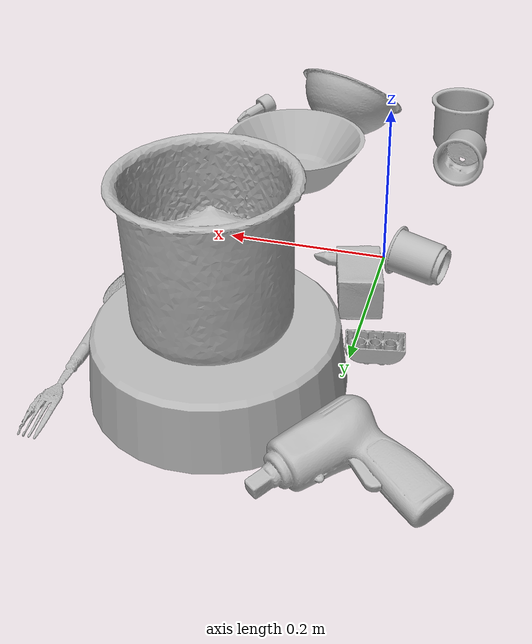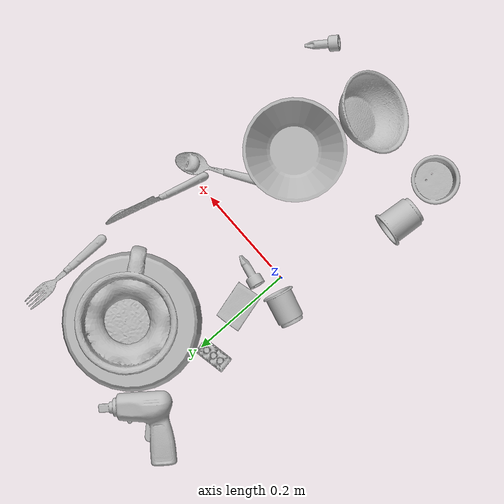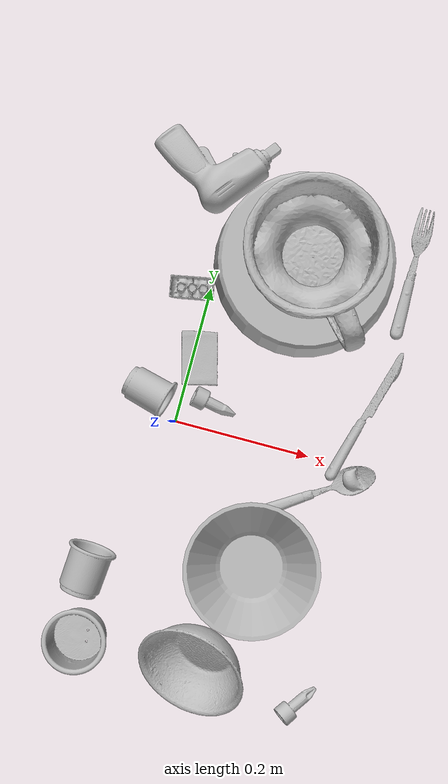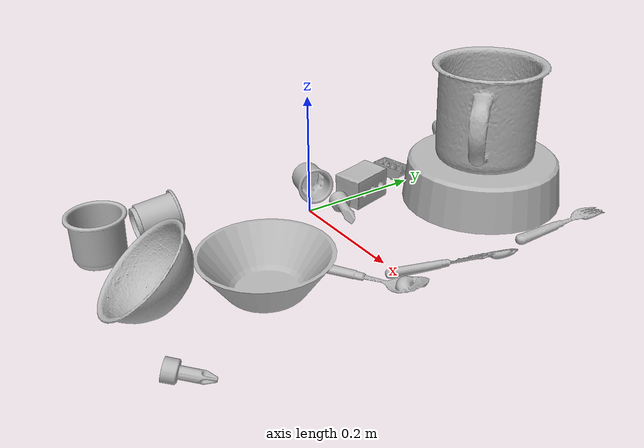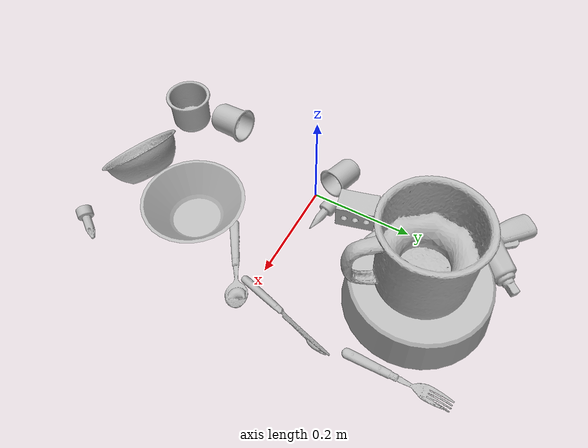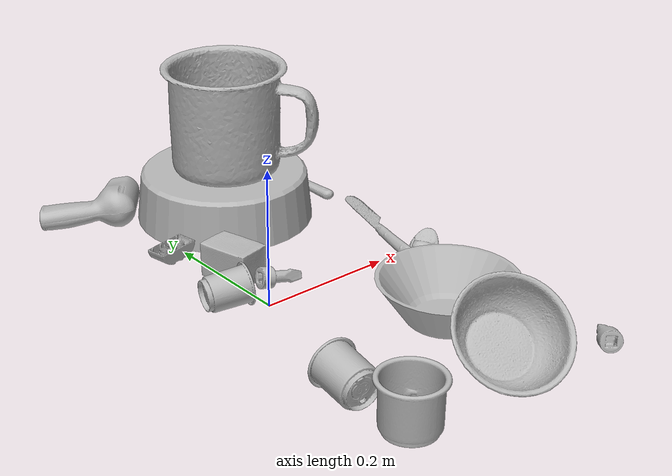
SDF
<sdf version="1.4">
  <world name="default">
    <light name="light1" type="point">
      <pose>0 0 1 0 0 0</pose>
      <diffuse>3 3 3 1</diffuse>
      <specular>3 3 3 1</specular>
    </light>
    <light name="light2" type="point">
      <pose>0 0.5 2 0 0 0</pose>
      <diffuse>1 1 1 1</diffuse>
      <specular>1 1 1 1</specular>
    </light>
    <light name="light3" type="point">
      <pose>0 0.5 2 0 0 0</pose>
      <diffuse>3 3 3 1</diffuse>
      <specular>3 3 3 1</specular>
    </light>
    <scene>
      <ambient>0.7 0.7 0.7</ambient>
    </scene>
    <model name="plate1">
      <link name="link_plate1">
        <collision name="default">
          <geometry>
            <mesh>
              <uri>model://pan_tefal/collision_meshes/collision.obj</uri>
              <scale>1.0 1.0 1.0</scale>
            </mesh>
          </geometry>
          <surface>
            <friction>
              <ode>
                <mu>0.5</mu>
                <mu2>0.5</mu2>
              </ode>
            </friction>
          <contact>
        <ode>
            <max_vel>0</max_vel>
            <min_depth>0.0001</min_depth>
            <kp>1e8</kp>
        </ode>
    </contact></surface>
        </collision>
        <visual name="default">
          <geometry>
            <mesh>
              <uri>model://pan_tefal/visual_meshes/visual.dae</uri>
              <scale>1.0 1.0 1.0</scale>
            </mesh>
          </geometry>
        </visual>
        <inertial>
          <mass>1.356081485748291</mass>
          <pose>-0.00018001878925133497 3.2792810088722035e-05 -0.008514934219419956 0.000819032333381865 -0.0003301471985614655 -0.33185384828338066</pose>
          <inertia>
            <ixx>0.009360965</ixx>
            <iyy>0.009421317</iyy>
            <izz>0.017231734</izz>
            <ixy>0</ixy>
            <ixz>0</ixz>
            <iyz>0</iyz>
          </inertia>
        </inertial>
      </link>
      <pose>0.12292744219303131 0.2665383517742157 0.037821996957063675 -3.1415922013490336 -3.180583982450513e-07 0.4598983993760587</pose>
    </model>
    <model name="cup1">
      <link name="link_cup1">
        <collision name="default">
          <geometry>
            <mesh>
              <uri>model://mug/collision_meshes/collision.obj</uri>
              <scale>2.0 2.0 2.0</scale>
            </mesh>
          </geometry>
          <surface>
            <friction>
              <ode>
                <mu>0.5</mu>
                <mu2>0.5</mu2>
              </ode>
            </friction>
          <contact>
        <ode>
            <max_vel>0</max_vel>
            <min_depth>0.0001</min_depth>
            <kp>1e8</kp>
        </ode>
    </contact></surface>
        </collision>
        <visual name="default">
          <geometry>
            <mesh>
              <uri>model://mug/visual_meshes/visual.dae</uri>
              <scale>2.0 2.0 2.0</scale>
            </mesh>
          </geometry>
        </visual>
        <inertial>
          <mass>1.425228476524353</mass>
          <pose>0.019143342971801758 0.0016286519821733236 -0.021894657984375954 -0.12983169455958588 0.08737743422724535 0.05507285753370488</pose>
          <inertia>
            <ixx>0.005662833</ixx>
            <iyy>0.0063250507</iyy>
            <izz>0.0073150056</izz>
            <ixy>0</ixy>
            <ixz>0</ixz>
            <iyz>0</iyz>
          </inertia>
        </inertial>
      </link>
      <pose>0.14218580722808838 0.24743184447288513 0.157894566655159 -0.002326427647619247 0.003202443183899544 2.237102206608735</pose>
    </model>
    <model name="silverware1">
      <link name="link_silverware1">
        <collision name="default">
          <geometry>
            <mesh>
              <uri>model://spoon/collision_meshes/collision.obj</uri>
              <scale>1.0 1.0 1.0</scale>
            </mesh>
          </geometry>
          <surface>
            <friction>
              <ode>
                <mu>0.5</mu>
                <mu2>0.5</mu2>
              </ode>
            </friction>
          <contact>
        <ode>
            <max_vel>0</max_vel>
            <min_depth>0.0001</min_depth>
            <kp>1e8</kp>
        </ode>
    </contact></surface>
        </collision>
        <visual name="default">
          <geometry>
            <mesh>
              <uri>model://spoon/visual_meshes/visual.dae</uri>
              <scale>1.0 1.0 1.0</scale>
            </mesh>
          </geometry>
        </visual>
        <inertial>
          <mass>0.031423501670360565</mass>
          <pose>-0.005526318680495024 -0.0016034176805987954 -0.000727165665011853 0.035217765619004186 -0.03906586018731898 0.006150610672177042</pose>
          <inertia>
            <ixx>1.7478262e-06</ixx>
            <iyy>0.0001195654</iyy>
            <izz>0.000120427336</izz>
            <ixy>0</ixy>
            <ixz>0</ixz>
            <iyz>0</iyz>
          </inertia>
        </inertial>
      </link>
      <pose>0.21749168634414673 -0.0499829426407814 0.008385264314711094 0.006729151014188214 0.026892999283891626 0.5879150967568473</pose>
    </model>
    <model name="silverware2">
      <link name="link_silverware2">
        <collision name="default">
          <geometry>
            <mesh>
              <uri>model://fork/collision_meshes/collision.obj</uri>
              <scale>1.0 1.0 1.0</scale>
            </mesh>
          </geometry>
          <surface>
            <friction>
              <ode>
                <mu>0.5</mu>
                <mu2>0.5</mu2>
              </ode>
            </friction>
          <contact>
        <ode>
            <max_vel>0</max_vel>
            <min_depth>0.0001</min_depth>
            <kp>1e8</kp>
        </ode>
    </contact></surface>
        </collision>
        <visual name="default">
          <geometry>
            <mesh>
              <uri>model://fork/visual_meshes/visual.dae</uri>
              <scale>1.0 1.0 1.0</scale>
            </mesh>
          </geometry>
        </visual>
        <inertial>
          <mass>0.02368462271988392</mass>
          <pose>-0.02957003191113472 0.00046588238910771906 0.00032188621116802096 -0.013550757689210725 -0.010977831639922976 0.014453892765665301</pose>
          <inertia>
            <ixx>8.3028004e-07</ixx>
            <iyy>6.183376e-05</iyy>
            <izz>6.220513e-05</izz>
            <ixy>0</ixy>
            <ixz>0</ixz>
            <iyz>0</iyz>
          </inertia>
        </inertial>
      </link>
      <pose>0.2758885622024536 0.29614439606666565 0.007446623872965574 -3.063494724500116 0.0028358161987062334 1.5802216011532229</pose>
    </model>
    <model name="silverware3">
      <link name="link_silverware3">
        <collision name="default">
          <geometry>
            <mesh>
              <uri>model://knife/collision_meshes/collision.obj</uri>
              <scale>1.0 1.0 1.0</scale>
            </mesh>
          </geometry>
          <surface>
            <friction>
              <ode>
                <mu>0.5</mu>
                <mu2>0.5</mu2>
              </ode>
            </friction>
          <contact>
        <ode>
            <max_vel>0</max_vel>
            <min_depth>0.0001</min_depth>
            <kp>1e8</kp>
        </ode>
    </contact></surface>
        </collision>
        <visual name="default">
          <geometry>
            <mesh>
              <uri>model://knife/visual_meshes/visual.dae</uri>
              <scale>1.0 1.0 1.0</scale>
            </mesh>
          </geometry>
        </visual>
        <inertial>
          <mass>0.023530498147010803</mass>
          <pose>-0.023785250261425972 0.0015275124460458755 5.062020863988437e-05 0.07305757972864607 0.01724841573343299 -0.007409825279630946</pose>
          <inertia>
            <ixx>6.678909e-07</ixx>
            <iyy>9.040038e-05</iyy>
            <izz>9.0615475e-05</izz>
            <ixy>0</ixy>
            <ixz>0</ixz>
            <iyz>0</iyz>
          </inertia>
        </inertial>
      </link>
      <pose>0.26653361320495605 0.07812826335430145 0.008919013664126396 -0.8984559246120966 0.00416876616107047 1.2929390870400275</pose>
    </model>
    <model name="cup3">
      <link name="link_cup3">
        <collision name="default">
          <geometry>
            <mesh>
              <uri>model://b_cups/collision_meshes/collision.obj</uri>
              <scale>1.0 1.0 1.0</scale>
            </mesh>
          </geometry>
          <surface>
            <friction>
              <ode>
                <mu>0.5</mu>
                <mu2>0.5</mu2>
              </ode>
            </friction>
          <contact>
        <ode>
            <max_vel>0</max_vel>
            <min_depth>0.0001</min_depth>
            <kp>1e8</kp>
        </ode>
    </contact></surface>
        </collision>
        <visual name="default">
          <geometry>
            <mesh>
              <uri>model://b_cups/visual_meshes/visual.dae</uri>
              <scale>1.0 1.0 1.0</scale>
            </mesh>
          </geometry>
        </visual>
        <inertial>
          <mass>0.033049143850803375</mass>
          <pose>0.0005182002205401659 0.001805859967134893 -0.0013381808530539274 0.11356265792291019 0.03872585472979472 -0.3457023826899558</pose>
          <inertia>
            <ixx>2.1632983e-05</ixx>
            <iyy>2.1222275e-05</iyy>
            <izz>1.8203747e-05</izz>
            <ixy>0</ixy>
            <ixz>0</ixz>
            <iyz>0</iyz>
          </inertia>
        </inertial>
      </link>
      <pose>-0.048146363347768784 0.032521847635507584 0.027487030252814293 -1.266886968462272 1.2680179282658803 -1.531915893667411</pose>
    </model>
    <model name="cup4">
      <link name="link_cup4">
        <collision name="default">
          <geometry>
            <mesh>
              <uri>model://h_cups/collision_meshes/collision.obj</uri>
              <scale>1.0 1.0 1.0</scale>
            </mesh>
          </geometry>
          <surface>
            <friction>
              <ode>
                <mu>0.5</mu>
                <mu2>0.5</mu2>
              </ode>
            </friction>
          <contact>
        <ode>
            <max_vel>0</max_vel>
            <min_depth>0.0001</min_depth>
            <kp>1e8</kp>
        </ode>
    </contact></surface>
        </collision>
        <visual name="default">
          <geometry>
            <mesh>
              <uri>model://h_cups/visual_meshes/visual.dae</uri>
              <scale>1.0 1.0 1.0</scale>
            </mesh>
          </geometry>
        </visual>
        <inertial>
          <mass>0.11347958445549011</mass>
          <pose>-2.7030910132452846e-05 0.00023018615320324898 -0.0018405403243377805 -0.02436217983877791 0.06545222634893223 0.12885210457354207</pose>
          <inertia>
            <ixx>0.0001465536</ixx>
            <iyy>0.00014480477</iyy>
            <izz>0.00015369456</izz>
            <ixy>0</ixy>
            <ixz>0</ixz>
            <iyz>0</iyz>
          </inertia>
        </inertial>
      </link>
      <pose>-0.05322358012199402 -0.3353569507598877 0.03775801509618759 -8.912909670256538e-08 2.3435164295727495e-08 -3.117319424744424</pose>
    </model>
    <model name="cup5">
      <link name="link_cup5">
        <collision name="default">
          <geometry>
            <mesh>
              <uri>model://d_cups/collision_meshes/collision.obj</uri>
              <scale>1.0 1.0 1.0</scale>
            </mesh>
          </geometry>
          <surface>
            <friction>
              <ode>
                <mu>0.5</mu>
                <mu2>0.5</mu2>
              </ode>
            </friction>
          <contact>
        <ode>
            <max_vel>0</max_vel>
            <min_depth>0.0001</min_depth>
            <kp>1e8</kp>
        </ode>
    </contact></surface>
        </collision>
        <visual name="default">
          <geometry>
            <mesh>
              <uri>model://d_cups/visual_meshes/visual.dae</uri>
              <scale>1.0 1.0 1.0</scale>
            </mesh>
          </geometry>
        </visual>
        <inertial>
          <mass>0.039110079407691956</mass>
          <pose>0.0008068050956353545 0.0019117392366752028 -0.0022666517179459333 0.24011224021147495 -0.247107611945545 0.594295747375292</pose>
          <inertia>
            <ixx>3.2744327e-05</ixx>
            <iyy>3.2649565e-05</iyy>
            <izz>2.9639183e-05</izz>
            <ixy>0</ixy>
            <ixz>0</ixz>
            <iyz>0</iyz>
          </inertia>
        </inertial>
      </link>
      <pose>-0.06734392791986465 -0.23923428356647491 0.03239024057984352 -1.4246072361763003 0.7879923424165906 0.015452282588060112</pose>
    </model>
    <model name="bowl1">
      <link name="link_bowl1">
        <collision name="default">
          <geometry>
            <mesh>
              <uri>model://bowl/collision_meshes/collision.obj</uri>
              <scale>1.0 1.0 1.0</scale>
            </mesh>
          </geometry>
          <surface>
            <friction>
              <ode>
                <mu>0.5</mu>
                <mu2>0.5</mu2>
              </ode>
            </friction>
          <contact>
        <ode>
            <max_vel>0</max_vel>
            <min_depth>0.0001</min_depth>
            <kp>1e8</kp>
        </ode>
    </contact></surface>
        </collision>
        <visual name="default">
          <geometry>
            <mesh>
              <uri>model://bowl/visual_meshes/visual.dae</uri>
              <scale>1.0 1.0 1.0</scale>
            </mesh>
          </geometry>
        </visual>
        <inertial>
          <mass>0.04740063101053238</mass>
          <pose>0.00020445372501853853 -0.001030205050483346 -0.000804265437182039 -0.015764138065403298 0.014546740803255881 0.7140373892972721</pose>
          <inertia>
            <ixx>0.00010888298</ixx>
            <iyy>0.000106450105</iyy>
            <izz>0.00018317858</izz>
            <ixy>0</ixy>
            <ixz>0</ixz>
            <iyz>0</iyz>
          </inertia>
        </inertial>
      </link>
      <pose>0.12083811312913895 -0.32045069336891174 0.05010615661740303 0.6730440239422546 0.28313888407168647 -0.6928762459858433</pose>
    </model>
    <model name="bowl2">
      <link name="link_bowl2">
        <collision name="default">
          <geometry>
            <mesh>
              <uri>model://bowl_a/collision_meshes/collision.obj</uri>
              <scale>1.0 1.0 1.0</scale>
            </mesh>
          </geometry>
          <surface>
            <friction>
              <ode>
                <mu>0.5</mu>
                <mu2>0.5</mu2>
              </ode>
            </friction>
          <contact>
        <ode>
            <max_vel>0</max_vel>
            <min_depth>0.0001</min_depth>
            <kp>1e8</kp>
        </ode>
    </contact></surface>
        </collision>
        <visual name="default">
          <geometry>
            <mesh>
              <uri>model://bowl_a/visual_meshes/visual.dae</uri>
              <scale>1.0 1.0 1.0</scale>
            </mesh>
          </geometry>
        </visual>
        <inertial>
          <mass>0.4596928358078003</mass>
          <pose>0.0002786756376735866 4.731212538899854e-05 -0.001376529224216938 -0.0009805332698969178 -0.0010938264579112213 -0.1912378887702168</pose>
          <inertia>
            <ixx>0.0013087663</ixx>
            <iyy>0.0013168014</iyy>
            <izz>0.002327691</izz>
            <ixy>0</ixy>
            <ixz>0</ixz>
            <iyz>0</iyz>
          </inertia>
        </inertial>
      </link>
      <pose>0.16224166750907898 -0.17611730098724365 0.030383002012968063 -2.844582131628633e-08 1.4603533876799803e-07 1.4250926766341268</pose>
    </model>
    <model name="toy1">
      <link name="link_toy1">
        <collision name="default">
          <geometry>
            <mesh>
              <uri>model://d_toy_airplane/collision_meshes/collision.obj</uri>
              <scale>1.0 1.0 1.0</scale>
            </mesh>
          </geometry>
          <surface>
            <friction>
              <ode>
                <mu>0.5</mu>
                <mu2>0.5</mu2>
              </ode>
            </friction>
          <contact>
        <ode>
            <max_vel>0</max_vel>
            <min_depth>0.0001</min_depth>
            <kp>1e8</kp>
        </ode>
    </contact></surface>
        </collision>
        <visual name="default">
          <geometry>
            <mesh>
              <uri>model://d_toy_airplane/visual_meshes/visual.dae</uri>
              <scale>1.0 1.0 1.0</scale>
            </mesh>
          </geometry>
        </visual>
        <inertial>
          <mass>0.017302583903074265</mass>
          <pose>9.410295751877129e-05 -5.809326466987841e-05 -0.011728093028068542 0.00026573120399734447 0.004679044314999465 0.5192011935173154</pose>
          <inertia>
            <ixx>5.1869783e-06</ixx>
            <iyy>5.190892e-06</iyy>
            <izz>1.5659823e-06</izz>
            <ixy>0</ixy>
            <ixz>0</ixz>
            <iyz>0</iyz>
          </inertia>
        </inertial>
      </link>
      <pose>0.2782635986804962 -0.3477688729763031 0.011234505102038383 1.794414698215531 -0.1970391874689136 2.4459616428813518</pose>
    </model>
    <model name="toy2">
      <link name="link_toy2">
        <collision name="default">
          <geometry>
            <mesh>
              <uri>model://b_toy_airplane/collision_meshes/collision.obj</uri>
              <scale>1.0 1.0 1.0</scale>
            </mesh>
          </geometry>
          <surface>
            <friction>
              <ode>
                <mu>0.5</mu>
                <mu2>0.5</mu2>
              </ode>
            </friction>
          <contact>
        <ode>
            <max_vel>0</max_vel>
            <min_depth>0.0001</min_depth>
            <kp>1e8</kp>
        </ode>
    </contact></surface>
        </collision>
        <visual name="default">
          <geometry>
            <mesh>
              <uri>model://b_toy_airplane/visual_meshes/visual.dae</uri>
              <scale>1.0 1.0 1.0</scale>
            </mesh>
          </geometry>
        </visual>
        <inertial>
          <mass>0.45341360569000244</mass>
          <pose>0.00508136535063386 0.004015584941953421 0.00954306498169899 -0.04001809497736226 -0.04022180630889015 -0.560150289687741</pose>
          <inertia>
            <ixx>0.0008417707</ixx>
            <iyy>0.00033646397</iyy>
            <izz>0.0010472467</izz>
            <ixy>0</ixy>
            <ixz>0</ixz>
            <iyz>0</iyz>
          </inertia>
        </inertial>
      </link>
      <pose>-0.03942769765853882 0.36173924803733826 0.0356890894472599 3.0695709014683663 0.07405955378783388 0.9190738026706002</pose>
    </model>
    <model name="toy3">
      <link name="link_toy3">
        <collision name="default">
          <geometry>
            <mesh>
              <uri>model://a_lego_duplo/collision_meshes/collision.obj</uri>
              <scale>1.0 1.0 1.0</scale>
            </mesh>
          </geometry>
          <surface>
            <friction>
              <ode>
                <mu>0.5</mu>
                <mu2>0.5</mu2>
              </ode>
            </friction>
          <contact>
        <ode>
            <max_vel>0</max_vel>
            <min_depth>0.0001</min_depth>
            <kp>1e8</kp>
        </ode>
    </contact></surface>
        </collision>
        <visual name="default">
          <geometry>
            <mesh>
              <uri>model://a_lego_duplo/visual_meshes/visual.dae</uri>
              <scale>1.0 1.0 1.0</scale>
            </mesh>
          </geometry>
        </visual>
        <inertial>
          <mass>0.019445955753326416</mass>
          <pose>-0.00011337668547639623 0.0001851754350354895 0.00036926064058206975 -0.014116968054253443 -0.00012565964371363686 6.142473690124929e-05</pose>
          <inertia>
            <ixx>2.4931269e-06</ixx>
            <iyy>5.58515e-06</iyy>
            <izz>6.9184516e-06</izz>
            <ixy>0</ixy>
            <ixz>0</ixz>
            <iyz>0</iyz>
          </inertia>
        </inertial>
      </link>
      <pose>-0.026003392413258553 0.19270406663417816 0.012124664150178432 -3.1412950653425287 -0.015576444212751684 0.17785490733239</pose>
    </model>
    <model name="toy4">
      <link name="link_toy4">
        <collision name="default">
          <geometry>
            <mesh>
              <uri>model://foam_brick/collision_meshes/collision.obj</uri>
              <scale>1.0 1.0 1.0</scale>
            </mesh>
          </geometry>
          <surface>
            <friction>
              <ode>
                <mu>0.5</mu>
                <mu2>0.5</mu2>
              </ode>
            </friction>
          <contact>
        <ode>
            <max_vel>0</max_vel>
            <min_depth>0.0001</min_depth>
            <kp>1e8</kp>
        </ode>
    </contact></surface>
        </collision>
        <visual name="default">
          <geometry>
            <mesh>
              <uri>model://foam_brick/visual_meshes/visual.dae</uri>
              <scale>1.0 1.0 1.0</scale>
            </mesh>
          </geometry>
        </visual>
        <inertial>
          <mass>0.18476375937461853</mass>
          <pose>-0.00025224717683158815 0.0003458433784544468 -0.00025321010616607964 -0.2940193708875024 0.01727444338713918 -0.0007449870082442464</pose>
          <inertia>
            <ixx>8.070827e-05</ixx>
            <iyy>0.00012885487</iyy>
            <izz>0.00013049248</izz>
            <ixy>0</ixy>
            <ixz>0</ixz>
            <iyz>0</iyz>
          </inertia>
        </inertial>
      </link>
      <pose>0.011980901472270489 0.0964241698384285 0.025910696014761925 1.5828206857893439 -0.0003756576092172741 1.830195689476045</pose>
    </model>
    <model name="toy5">
      <link name="link_toy5">
        <collision name="default">
          <geometry>
            <mesh>
              <uri>model://e_toy_airplane/collision_meshes/collision.obj</uri>
              <scale>1.0 1.0 1.0</scale>
            </mesh>
          </geometry>
          <surface>
            <friction>
              <ode>
                <mu>0.5</mu>
                <mu2>0.5</mu2>
              </ode>
            </friction>
          <contact>
        <ode>
            <max_vel>0</max_vel>
            <min_depth>0.0001</min_depth>
            <kp>1e8</kp>
        </ode>
    </contact></surface>
        </collision>
        <visual name="default">
          <geometry>
            <mesh>
              <uri>model://e_toy_airplane/visual_meshes/visual.dae</uri>
              <scale>1.0 1.0 1.0</scale>
            </mesh>
          </geometry>
        </visual>
        <inertial>
          <mass>0.01085815578699112</mass>
          <pose>0.00011740455374820158 -2.248299279017374e-05 -0.011187206953763962 0.005518501127689679 0.009228289957601814 0.15041514141603637</pose>
          <inertia>
            <ixx>3.3140323e-06</ixx>
            <iyy>3.2801318e-06</iyy>
            <izz>9.959974e-07</izz>
            <ixy>0</ixy>
            <ixz>0</ixz>
            <iyz>0</iyz>
          </inertia>
        </inertial>
      </link>
      <pose>0.04918714985251427 0.03717954084277153 0.012219112366437912 -1.7882537746233125 -0.6009550868679179 -1.643124758983675</pose>
    </model>
  <physics type="ode">
      <max_contacts>50</max_contacts>
      <ode>
        <solver>
          <type>quick</type>
          <iters>75</iters>
        </solver>
        <constraints>
          <contact_max_correcting_vel>0</contact_max_correcting_vel>
          <contact_surface_layer>0</contact_surface_layer>
        </constraints>
      </ode>
    </physics></world>
</sdf>
